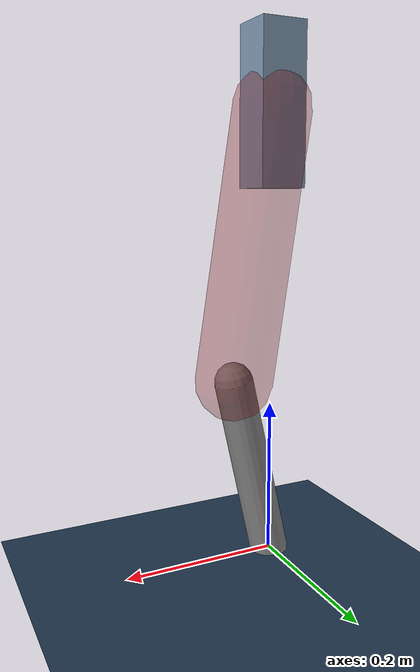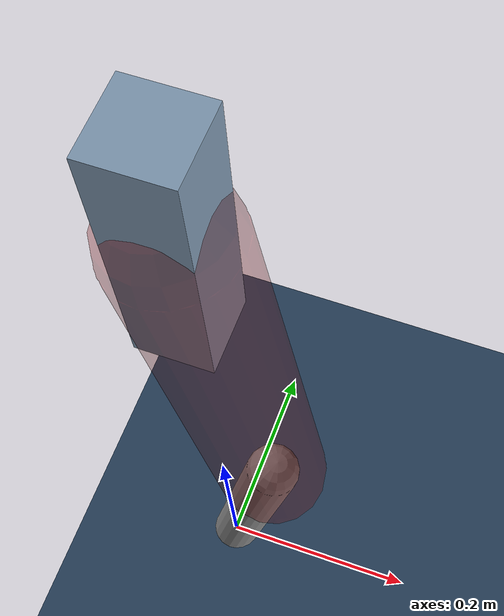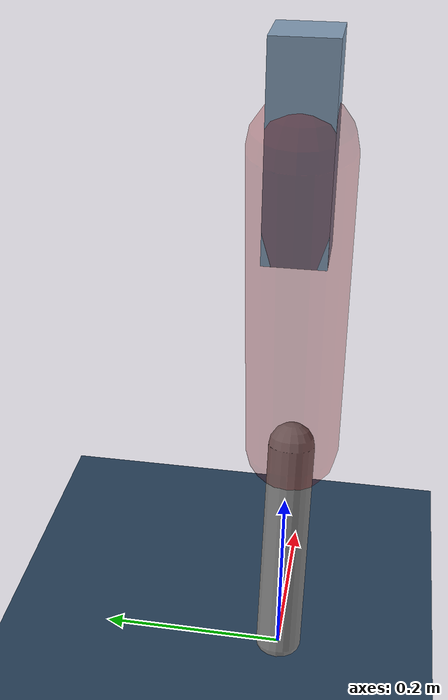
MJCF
<mujoco model="Hopper2D">
	<compiler inertiafromgeom="true" angle="radian" />
	<option timestep="0.001" integrator="implicit" cone="elliptic" solver="Newton" tolerance="1e-10" />

	<default>
		<geom contype="1" conaffinity="1" condim="3" friction="2 0.005 0.0001" solref="0.005 1" />
		<joint limited="true" damping="0.1" />
	</default>

	<asset>
		<texture name="skybox" type="skybox" builtin="gradient" rgb1=".4 .6 .8" rgb2="0 0 0" width="800" height="800" />
		<texture name="grid" type="2d" builtin="checker" rgb1=".1 .2 .3" rgb2=".2 .3 .4" width="300" height="300" mark="edge" markrgb=".2 .3 .4" />
		<material name="ground" texture="grid" texrepeat="1 1" texuniform="true" reflectance="0.1" />
		<material name="leg" rgba="0.5 0.6 0.7 1" />
	</asset>

	<worldbody>

		<geom name="floor" type="plane" size="5 5 0.25" material="ground" />

		<light directional="false" diffuse="0.8 0.8 0.8" specular="0.3 0.3 0.3" pos="0 0 2" dir="0 0 -1" />
		<light mode="targetbodycom" target="base" directional="false" diffuse="0.8 0.8 0.8" specular="0.3 0.3 0.3" pos="0 0 2" dir="0 0 -1" />

		<camera name="fixed" pos="0 -2 1" xyaxes="1 0 0 0 0 1" />
		<camera name="tracking" mode="trackcom" pos="0 -3 1" />

		<body name="root" pos="0 0 0.5796207233727553">
			<joint name="slide_x" type="slide" axis="1 0 0" range="-100 100" />
			<joint name="slide_z" type="slide" axis="0 0 1" range="0 10" />

			<body name="base" pos="0 0 0">
				<geom name="torso" type="box" size="0.03 0.03 0.1" mass="2.102" material="leg" />

				<body name="link1" pos="0 0 0" euler="0 1.4175372593646605 0">
					<joint type="hinge" axis="0 -1 0" pos="0 0 0" name="hinge1" limited="true" range="-3.14 3.14" stiffness="0" damping="0.1" />
					<geom name="thigh" type="capsule" fromto="0 0 0 0.3481159370573308 0 0" size="0.05" rgba="0.5 0 0 0.3" mass="1.1214246237605263" />

					<body name="link2" pos="0.3481159370573308 0 0" euler="0 0.3751255697447283 0">
						<joint type="hinge" axis="0 -1 0" pos="0 0 0" name="hinge2" limited="true" range="-3.14 3.14" stiffness="0" damping="0.1" />
						<geom name="shank" type="capsule" fromto="0 0 0 0.24150478631542455 0 0" size="0.025" mass="0.43550382905233964" />

					</body>
				</body>
			</body>
		</body>
	</worldbody>

	<actuator>
		<motor name="torque1" joint="hinge1" ctrlrange="-54.38230963565276 54.38230963565276" ctrllimited="true" gear="1" />
		<motor name="torque2" joint="hinge2" ctrlrange="-48.51081989587175 48.51081989587175" ctrllimited="true" gear="1" />
	</actuator>
</mujoco>
